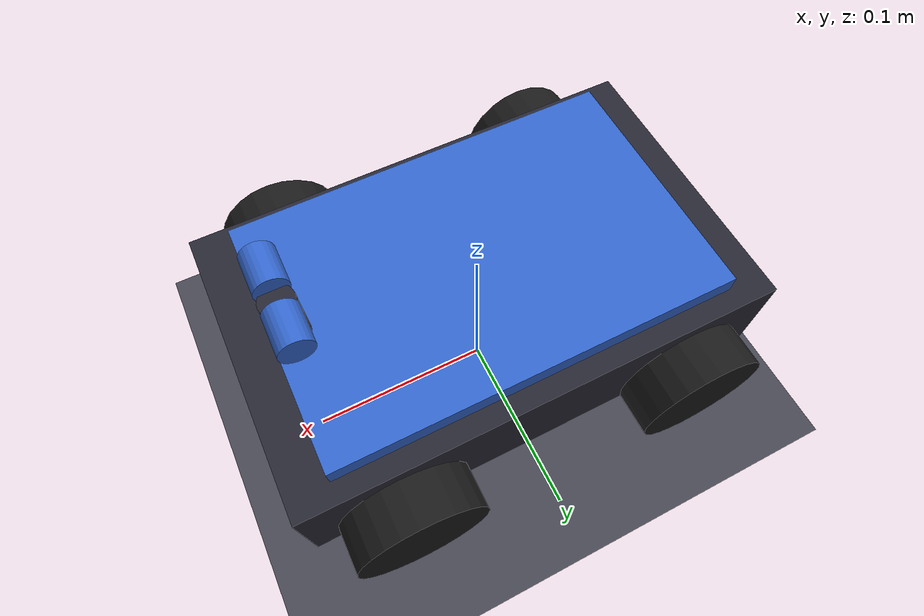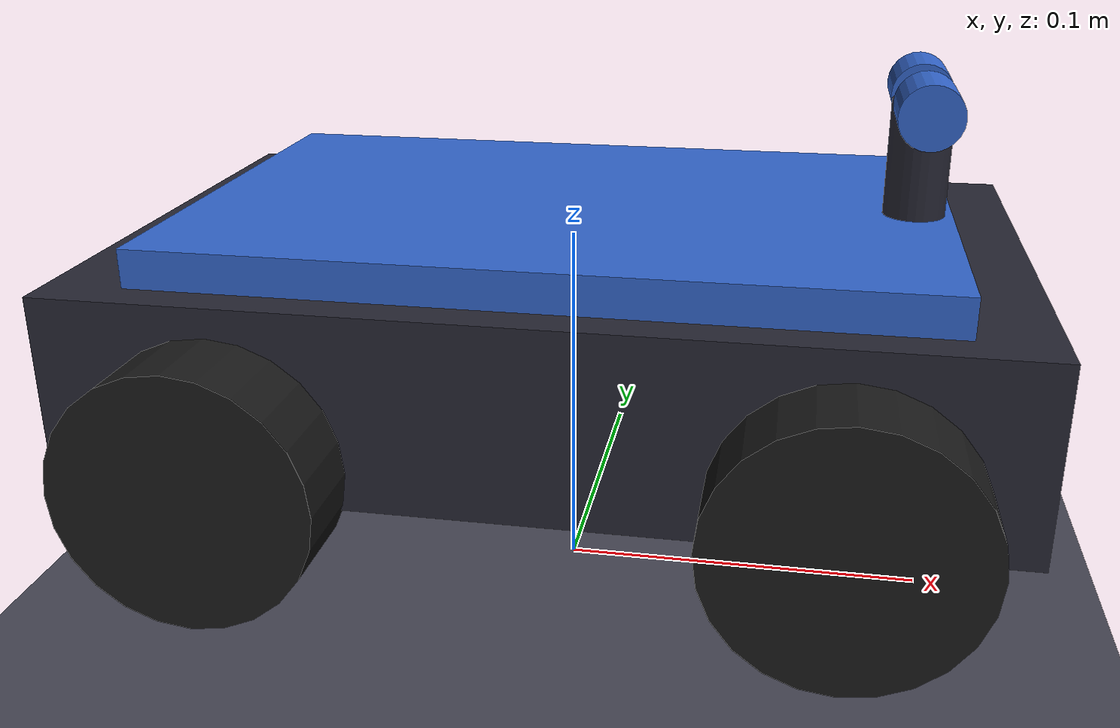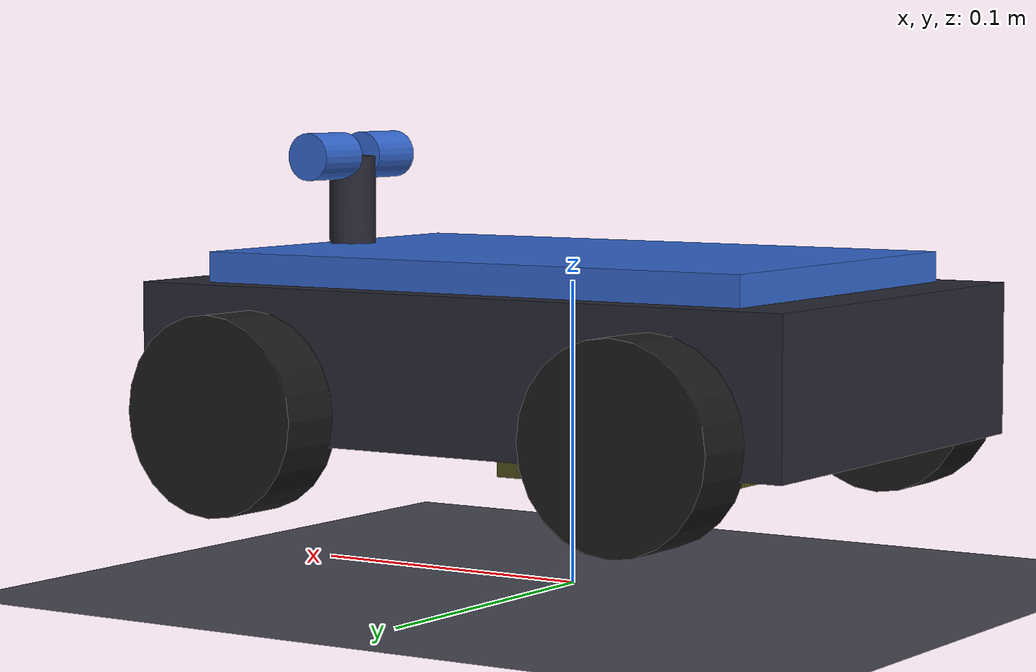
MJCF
<mujoco model="elegoo-rover-simple">
  <compiler angle="radian"/>

  <option timestep="0.01" gravity="0 0 -9.81" integrator="implicit"/>

  <asset>
    <material name="chassis_mat" rgba="0.15 0.15 0.2 1"/>
    <material name="wheel_mat" rgba="0.1 0.1 0.1 1"/>
    <material name="accent_mat" rgba="0.2 0.4 0.8 1"/>
    <texture name="grid" type="2d" builtin="checker" rgb1="0.3 0.3 0.35" rgb2="0.25 0.25 0.3" width="512" height="512"/>
    <material name="grid_mat" texture="grid" texrepeat="10 10" texuniform="true"/>
  </asset>

  <worldbody>
    <geom name="ground" type="plane" size="5 5 0.1" material="grid_mat"/>
    <light pos="0 0 3" dir="0 0 -1" diffuse="0.8 0.8 0.8"/>
    <light pos="2 2 3" dir="-0.5 -0.5 -1" diffuse="0.4 0.4 0.4"/>

    <body name="rover" pos="0 0 0.06">
      <joint name="rover_free" type="free"/>
      <inertial pos="0 0 0.01" mass="0.35" diaginertia="0.001 0.002 0.002"/>

      <!-- Chassis body (box) -->
      <geom name="chassis" type="box" size="0.12 0.075 0.025" pos="0 0 0.015" material="chassis_mat"/>

      <!-- Top deck -->
      <geom name="top_deck" type="box" size="0.10 0.065 0.005" pos="0 0 0.045" material="accent_mat"/>

      <!-- Ultrasonic sensor mount -->
      <geom name="sensor_post" type="cylinder" size="0.008 0.02" pos="0.09 0 0.06" material="chassis_mat"/>
      <geom name="sensor_left" type="cylinder" size="0.008 0.01" pos="0.09 0.015 0.08" euler="1.5708 0 0" material="accent_mat"/>
      <geom name="sensor_right" type="cylinder" size="0.008 0.01" pos="0.09 -0.015 0.08" euler="1.5708 0 0" material="accent_mat"/>

      <!-- Battery pack underneath -->
      <geom name="battery" type="box" size="0.04 0.03 0.012" pos="-0.03 0 -0.01" rgba="0.3 0.3 0.1 1"/>

      <!-- Front-left wheel -->
      <body name="wheel_fl" pos="0.075 0.085 0">
        <joint name="joint_fl" type="hinge" axis="0 1 0" damping="0.01"/>
        <geom name="geom_fl" type="cylinder" size="0.0325 0.0125"
              euler="1.5708 0 0" material="wheel_mat"
              friction="1.0 0.005 0.001" contype="1" conaffinity="1" mass="0.0375"/>
      </body>

      <!-- Front-right wheel -->
      <body name="wheel_fr" pos="0.075 -0.085 0">
        <joint name="joint_fr" type="hinge" axis="0 1 0" damping="0.01"/>
        <geom name="geom_fr" type="cylinder" size="0.0325 0.0125"
              euler="1.5708 0 0" material="wheel_mat"
              friction="1.0 0.005 0.001" contype="1" conaffinity="1" mass="0.0375"/>
      </body>

      <!-- Rear-left wheel -->
      <body name="wheel_rl" pos="-0.075 0.085 0">
        <joint name="joint_rl" type="hinge" axis="0 1 0" damping="0.01"/>
        <geom name="geom_rl" type="cylinder" size="0.0325 0.0125"
              euler="1.5708 0 0" material="wheel_mat"
              friction="1.0 0.005 0.001" contype="1" conaffinity="1" mass="0.0375"/>
      </body>

      <!-- Rear-right wheel -->
      <body name="wheel_rr" pos="-0.075 -0.085 0">
        <joint name="joint_rr" type="hinge" axis="0 1 0" damping="0.01"/>
        <geom name="geom_rr" type="cylinder" size="0.0325 0.0125"
              euler="1.5708 0 0" material="wheel_mat"
              friction="1.0 0.005 0.001" contype="1" conaffinity="1" mass="0.0375"/>
      </body>
    </body>
  </worldbody>

  <actuator>
    <velocity name="motor_fl" joint="joint_fl" kv="20" ctrlrange="-10 10"/>
    <velocity name="motor_fr" joint="joint_fr" kv="20" ctrlrange="-10 10"/>
    <velocity name="motor_rl" joint="joint_rl" kv="20" ctrlrange="-10 10"/>
    <velocity name="motor_rr" joint="joint_rr" kv="20" ctrlrange="-10 10"/>
  </actuator>
</mujoco>
